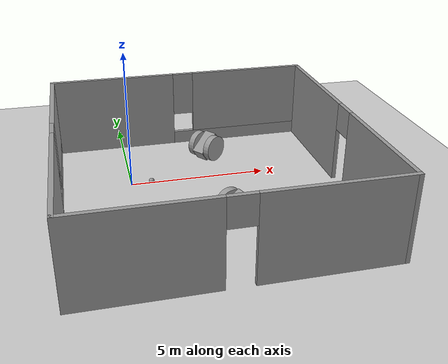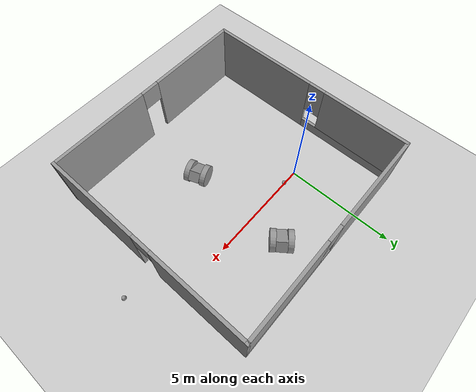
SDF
<sdf version="1.6">
 <world name="default">
  <plugin name="hello" filename="libhello.so"/>
  <light name="sun" type="directional">
   <pose>0 0 10 0 -0 0</pose>
   <diffuse>0.8 0.8 0.8 1</diffuse>
   <specular>0.2 0.2 0.2 1</specular>
   <attenuation>
    <range>1000</range>
    <constant>0.9</constant>
    <linear>0.01</linear>
    <quadratic>0.001</quadratic>
   </attenuation>
   <direction>-0.5 0.1 -0.9</direction>
  </light>
  <model name="ground_plane">
   <static>1</static>
   <link name="link">
    <collision name="collision">
     <geometry><plane><normal>0 0 1</normal><size>100 100</size></plane></geometry>
     <surface><friction><ode><mu>100</mu><mu2>50</mu2></ode></friction></surface>
    </collision>
    <visual name="visual">
     <cast_shadows>0</cast_shadows>
     <geometry><plane><normal>0 0 1</normal><size>100 100</size></plane></geometry>
     <material>
      <script><uri>file://media/materials/scripts/gazebo.material</uri><name>Gazebo/Grey</name></script>
     </material>
    </visual>
   </link>
  </model>
  <gravity>0 0 -9.8</gravity>
  <magnetic_field>6e-06 2.3e-05 -4.2e-05</magnetic_field>
  <atmosphere type="adiabatic"/>
  <physics name="default_physics" default="0" type="ode">
   <max_step_size>0.001</max_step_size>
   <real_time_factor>1</real_time_factor>
   <real_time_update_rate>1000</real_time_update_rate>
  </physics>
  <scene><ambient>0.4 0.4 0.4 1</ambient><background>0.7 0.7 0.7 1</background><shadows>1</shadows></scene>
  <spherical_coordinates>
   <surface_model>EARTH_WGS84</surface_model>
   <latitude_deg>0</latitude_deg>
   <longitude_deg>0</longitude_deg>
   <elevation>0</elevation>
   <heading_deg>0</heading_deg>
  </spherical_coordinates>
  <model name="Room">
   <pose>2.46923 -1.60697 0 0 -0 0</pose>
   <link name="Wall_0">
    <pose>0 5 0 0 -0 0</pose>
    <visual name="Wall_0_Visual_0">
     <pose>-2.67701 0 1.5 0 -0 0</pose>
     <geometry><box><size>4.79598 0.15 3</size></box></geometry>
     <material>
      <script><uri>file://media/materials/scripts/gazebo.material</uri><name>Gazebo/Grey</name></script>
      <ambient>1 1 1 1</ambient>
     </material>
     <meta><layer>0</layer></meta>
    </visual>
    <collision name="Wall_0_Collision_0">
     <geometry><box><size>4.79598 0.15 3</size></box></geometry>
     <pose>-2.67701 0 1.5 0 -0 0</pose>
    </collision>
    <visual name="Wall_0_Visual_1">
     <pose>2.39799 0 0.25 0 -0 0</pose>
     <geometry><box><size>5.35402 0.15 0.5</size></box></geometry>
     <material>
      <script><uri>file://media/materials/scripts/gazebo.material</uri><name>Gazebo/Grey</name></script>
      <ambient>1 1 1 1</ambient>
     </material>
     <meta><layer>0</layer></meta>
    </visual>
    <collision name="Wall_0_Collision_1">
     <geometry><box><size>5.35402 0.15 0.5</size></box></geometry>
     <pose>2.39799 0 0.25 0 -0 0</pose>
    </collision>
    <visual name="Wall_0_Visual_2">
     <pose>2.79799 0 1.75 0 -0 0</pose>
     <geometry><box><size>4.55402 0.15 2.5</size></box></geometry>
     <material>
      <script><uri>file://media/materials/scripts/gazebo.material</uri><name>Gazebo/Grey</name></script>
      <ambient>1 1 1 1</ambient>
     </material>
     <meta><layer>0</layer></meta>
    </visual>
    <collision name="Wall_0_Collision_2">
     <geometry><box><size>4.55402 0.15 2.5</size></box></geometry>
     <pose>2.79799 0 1.75 0 -0 0</pose>
    </collision>
    <visual name="Wall_0_Visual_3">
     <pose>0.120979 0 2.15 0 -0 0</pose>
     <geometry><box><size>0.8 0.15 1.7</size></box></geometry>
     <material>
      <script><uri>file://media/materials/scripts/gazebo.material</uri><name>Gazebo/Grey</name></script>
      <ambient>1 1 1 1</ambient>
     </material>
     <meta><layer>0</layer></meta>
    </visual>
    <collision name="Wall_0_Collision_3">
     <geometry><box><size>0.8 0.15 1.7</size></box></geometry>
     <pose>0.120979 0 2.15 0 -0 0</pose>
    </collision>
   </link>
   <link name="Wall_1">
    <collision name="Wall_1_Collision">
     <geometry><box><size>0.15 0.15 2.5</size></box></geometry>
     <pose>0 0 1.25 0 -0 0</pose>
    </collision>
    <visual name="Wall_1_Visual">
     <pose>0 0 1.25 0 -0 0</pose>
     <geometry><box><size>0.15 0.15 2.5</size></box></geometry>
     <material>
      <script><uri>file://media/materials/scripts/gazebo.material</uri><name>Gazebo/Grey</name></script>
      <ambient>1 1 1 1</ambient>
     </material>
     <meta><layer>0</layer></meta>
    </visual>
    <pose>5 5 0 0 -0 0</pose>
   </link>
   <link name="Wall_11">
    <pose>0 -5 0 0 -0 0</pose>
    <visual name="Wall_11_Visual_0">
     <pose>-2.82514 0 1.5 0 -0 0</pose>
     <geometry><box><size>4.49973 0.15 3</size></box></geometry>
     <material>
      <script><uri>file://media/materials/scripts/gazebo.material</uri><name>Gazebo/Grey</name></script>
      <ambient>1 1 1 1</ambient>
     </material>
     <meta><layer>0</layer></meta>
    </visual>
    <collision name="Wall_11_Collision_0">
     <geometry><box><size>4.49973 0.15 3</size></box></geometry>
     <pose>-2.82514 0 1.5 0 -0 0</pose>
    </collision>
    <visual name="Wall_11_Visual_1">
     <pose>2.69986 0 1.5 0 -0 0</pose>
     <geometry><box><size>4.75027 0.15 3</size></box></geometry>
     <material>
      <script><uri>file://media/materials/scripts/gazebo.material</uri><name>Gazebo/Grey</name></script>
      <ambient>1 1 1 1</ambient>
     </material>
     <meta><layer>0</layer></meta>
    </visual>
    <collision name="Wall_11_Collision_1">
     <geometry><box><size>4.75027 0.15 3</size></box></geometry>
     <pose>2.69986 0 1.5 0 -0 0</pose>
    </collision>
    <visual name="Wall_11_Visual_2">
     <pose>-0.125272 0 2.5 0 -0 0</pose>
     <geometry><box><size>0.9 0.15 1</size></box></geometry>
     <material>
      <script><uri>file://media/materials/scripts/gazebo.material</uri><name>Gazebo/Grey</name></script>
      <ambient>1 1 1 1</ambient>
     </material>
     <meta><layer>0</layer></meta>
    </visual>
    <collision name="Wall_11_Collision_2">
     <geometry><box><size>0.9 0.15 1</size></box></geometry>
     <pose>-0.125272 0 2.5 0 -0 0</pose>
    </collision>
   </link>
   <link name="Wall_4">
    <pose>-5 0 0 0 -0 1.5708</pose>
    <visual name="Wall_4_Visual_0">
     <pose>-2.47108 0 1.5 0 -0 0</pose>
     <geometry><box><size>5.20783 0.15 3</size></box></geometry>
     <material>
      <script><uri>file://media/materials/scripts/gazebo.material</uri><name>Gazebo/Grey</name></script>
      <ambient>1 1 1 1</ambient>
     </material>
     <meta><layer>0</layer></meta>
    </visual>
    <collision name="Wall_4_Collision_0">
     <geometry><box><size>5.20783 0.15 3</size></box></geometry>
     <pose>-2.47108 0 1.5 0 -0 0</pose>
    </collision>
    <visual name="Wall_4_Visual_1">
     <pose>2.60392 0 0.25 0 -0 0</pose>
     <geometry><box><size>4.94217 0.15 0.5</size></box></geometry>
     <material>
      <script><uri>file://media/materials/scripts/gazebo.material</uri><name>Gazebo/Grey</name></script>
      <ambient>1 1 1 1</ambient>
     </material>
     <meta><layer>0</layer></meta>
    </visual>
    <collision name="Wall_4_Collision_1">
     <geometry><box><size>4.94217 0.15 0.5</size></box></geometry>
     <pose>2.60392 0 0.25 0 -0 0</pose>
    </collision>
    <visual name="Wall_4_Visual_2">
     <pose>3.00392 0 1.75 0 -0 0</pose>
     <geometry><box><size>4.14217 0.15 2.5</size></box></geometry>
     <material>
      <script><uri>file://media/materials/scripts/gazebo.material</uri><name>Gazebo/Grey</name></script>
      <ambient>1 1 1 1</ambient>
     </material>
     <meta><layer>0</layer></meta>
    </visual>
    <collision name="Wall_4_Collision_2">
     <geometry><box><size>4.14217 0.15 2.5</size></box></geometry>
     <pose>3.00392 0 1.75 0 -0 0</pose>
    </collision>
    <visual name="Wall_4_Visual_3">
     <pose>0.532831 0 2.15 0 -0 0</pose>
     <geometry><box><size>0.8 0.15 1.7</size></box></geometry>
     <material>
      <script><uri>file://media/materials/scripts/gazebo.material</uri><name>Gazebo/Grey</name></script>
      <ambient>1 1 1 1</ambient>
     </material>
     <meta><layer>0</layer></meta>
    </visual>
    <collision name="Wall_4_Collision_3">
     <geometry><box><size>0.8 0.15 1.7</size></box></geometry>
     <pose>0.532831 0 2.15 0 -0 0</pose>
    </collision>
   </link>
   <link name="Wall_9">
    <pose>5 0 0 0 0 -1.5708</pose>
    <visual name="Wall_9_Visual_0">
     <pose>-2.76507 0 1.5 0 -0 0</pose>
     <geometry><box><size>4.61985 0.15 3</size></box></geometry>
     <material>
      <script><uri>file://media/materials/scripts/gazebo.material</uri><name>Gazebo/Grey</name></script>
      <ambient>1 1 1 1</ambient>
     </material>
     <meta><layer>0</layer></meta>
    </visual>
    <collision name="Wall_9_Collision_0">
     <geometry><box><size>4.61985 0.15 3</size></box></geometry>
     <pose>-2.76507 0 1.5 0 -0 0</pose>
    </collision>
    <visual name="Wall_9_Visual_1">
     <pose>2.75993 0 1.5 0 -0 0</pose>
     <geometry><box><size>4.63015 0.15 3</size></box></geometry>
     <material>
      <script><uri>file://media/materials/scripts/gazebo.material</uri><name>Gazebo/Grey</name></script>
      <ambient>1 1 1 1</ambient>
     </material>
     <meta><layer>0</layer></meta>
    </visual>
    <collision name="Wall_9_Collision_1">
     <geometry><box><size>4.63015 0.15 3</size></box></geometry>
     <pose>2.75993 0 1.5 0 -0 0</pose>
    </collision>
    <visual name="Wall_9_Visual_2">
     <pose>-0.005149 0 2.5 0 -0 0</pose>
     <geometry><box><size>0.9 0.15 1</size></box></geometry>
     <material>
      <script><uri>file://media/materials/scripts/gazebo.material</uri><name>Gazebo/Grey</name></script>
      <ambient>1 1 1 1</ambient>
     </material>
     <meta><layer>0</layer></meta>
    </visual>
    <collision name="Wall_9_Collision_2">
     <geometry><box><size>0.9 0.15 1</size></box></geometry>
     <pose>-0.005149 0 2.5 0 -0 0</pose>
    </collision>
   </link>
   <static>1</static>
  </model>
  <model name="myRobot">
   <link name="link_0">
    <inertial>
     <mass>1</mass>
     <inertia>
      <ixx>0.166667</ixx>
      <ixy>0</ixy>
      <ixz>0</ixz>
      <iyy>0.166667</iyy>
      <iyz>0</iyz>
      <izz>0.166667</izz>
     </inertia>
    </inertial>
    <visual name="visual">
     <geometry><box><size>1 0.5 0.5</size></box></geometry>
     <material>
      <lighting>1</lighting>
      <script><uri>file://media/materials/scripts/gazebo.material</uri><name>Gazebo/Grey</name></script>
      <shader type="pixel"><normal_map>__default__</normal_map></shader>
      <ambient>0.3 0.3 0.3 1</ambient>
      <diffuse>0.7 0.7 0.7 1</diffuse>
      <specular>0.01 0.01 0.01 1</specular>
      <emissive>0 0 0 1</emissive>
     </material>
    </visual>
    <collision name="collision">
     <geometry><box><size>1 0.5 0.5</size></box></geometry>
     <surface>
      <friction>
       <ode><mu>1</mu><mu2>1</mu2><fdir1>0 0 0</fdir1><slip1>0</slip1><slip2>0</slip2></ode>
       <torsional>
        <coefficient>1</coefficient>
        <patch_radius>0</patch_radius>
        <surface_radius>0</surface_radius>
        <use_patch_radius>1</use_patch_radius>
        <ode><slip>0</slip></ode>
       </torsional>
      </friction>
      <bounce><restitution_coefficient>0</restitution_coefficient><threshold>1e+06</threshold></bounce>
      <contact>
       <collide_without_contact>0</collide_without_contact>
       <collide_without_contact_bitmask>1</collide_without_contact_bitmask>
       <collide_bitmask>1</collide_bitmask>
       <ode>
        <soft_cfm>0</soft_cfm>
        <soft_erp>0.2</soft_erp>
        <kp>1e+13</kp>
        <kd>1</kd>
        <max_vel>0.01</max_vel>
        <min_depth>0</min_depth>
       </ode>
       <bullet>
        <split_impulse>1</split_impulse>
        <split_impulse_penetration_threshold>-0.01</split_impulse_penetration_threshold>
        <soft_cfm>0</soft_cfm>
        <soft_erp>0.2</soft_erp>
        <kp>1e+13</kp>
        <kd>1</kd>
       </bullet>
      </contact>
     </surface>
    </collision>
   </link>
   <link name="link_1">
    <pose>0 -0.375048 0 1.5707 -0 0</pose>
    <inertial>
     <mass>1</mass>
     <inertia><ixx>0.145833</ixx><ixy>0</ixy><ixz>0</ixz><iyy>0.145833</iyy><iyz>0</iyz><izz>0.125</izz></inertia>
    </inertial>
    <visual name="visual">
     <geometry><cylinder><radius>0.5</radius><length>0.25</length></cylinder></geometry>
     <material>
      <lighting>1</lighting>
      <script><uri>file://media/materials/scripts/gazebo.material</uri><name>Gazebo/Grey</name></script>
      <shader type="pixel"><normal_map>__default__</normal_map></shader>
      <ambient>0.3 0.3 0.3 1</ambient>
      <diffuse>0.7 0.7 0.7 1</diffuse>
      <specular>0.01 0.01 0.01 1</specular>
      <emissive>0 0 0 1</emissive>
     </material>
    </visual>
    <collision name="collision">
     <geometry><cylinder><radius>0.5</radius><length>0.25</length></cylinder></geometry>
     <surface>
      <friction>
       <ode><mu>1</mu><mu2>1</mu2><fdir1>0 0 0</fdir1><slip1>0</slip1><slip2>0</slip2></ode>
       <torsional>
        <coefficient>1</coefficient>
        <patch_radius>0</patch_radius>
        <surface_radius>0</surface_radius>
        <use_patch_radius>1</use_patch_radius>
        <ode><slip>0</slip></ode>
       </torsional>
      </friction>
      <bounce><restitution_coefficient>0</restitution_coefficient><threshold>1e+06</threshold></bounce>
      <contact>
       <collide_without_contact>0</collide_without_contact>
       <collide_without_contact_bitmask>1</collide_without_contact_bitmask>
       <collide_bitmask>1</collide_bitmask>
       <ode>
        <soft_cfm>0</soft_cfm>
        <soft_erp>0.2</soft_erp>
        <kp>1e+13</kp>
        <kd>1</kd>
        <max_vel>0.01</max_vel>
        <min_depth>0</min_depth>
       </ode>
       <bullet>
        <split_impulse>1</split_impulse>
        <split_impulse_penetration_threshold>-0.01</split_impulse_penetration_threshold>
        <soft_cfm>0</soft_cfm>
        <soft_erp>0.2</soft_erp>
        <kp>1e+13</kp>
        <kd>1</kd>
       </bullet>
      </contact>
     </surface>
    </collision>
   </link>
   <link name="link_1_clone">
    <pose>0 0.375048 0 1.5707 -0 0</pose>
    <inertial>
     <mass>1</mass>
     <inertia><ixx>0.145833</ixx><ixy>0</ixy><ixz>0</ixz><iyy>0.145833</iyy><iyz>0</iyz><izz>0.125</izz></inertia>
    </inertial>
    <visual name="visual">
     <geometry><cylinder><radius>0.5</radius><length>0.25</length></cylinder></geometry>
     <material>
      <lighting>1</lighting>
      <script><uri>file://media/materials/scripts/gazebo.material</uri><name>Gazebo/Grey</name></script>
      <shader type="pixel"><normal_map>__default__</normal_map></shader>
      <ambient>0.3 0.3 0.3 1</ambient>
      <diffuse>0.7 0.7 0.7 1</diffuse>
      <specular>0.01 0.01 0.01 1</specular>
      <emissive>0 0 0 1</emissive>
     </material>
    </visual>
    <collision name="collision">
     <geometry><cylinder><radius>0.5</radius><length>0.25</length></cylinder></geometry>
     <surface>
      <friction>
       <ode><mu>1</mu><mu2>1</mu2><fdir1>0 0 0</fdir1><slip1>0</slip1><slip2>0</slip2></ode>
       <torsional>
        <coefficient>1</coefficient>
        <patch_radius>0</patch_radius>
        <surface_radius>0</surface_radius>
        <use_patch_radius>1</use_patch_radius>
        <ode><slip>0</slip></ode>
       </torsional>
      </friction>
      <bounce><restitution_coefficient>0</restitution_coefficient><threshold>1e+06</threshold></bounce>
      <contact>
       <collide_without_contact>0</collide_without_contact>
       <collide_without_contact_bitmask>1</collide_without_contact_bitmask>
       <collide_bitmask>1</collide_bitmask>
       <ode>
        <soft_cfm>0</soft_cfm>
        <soft_erp>0.2</soft_erp>
        <kp>1e+13</kp>
        <kd>1</kd>
        <max_vel>0.01</max_vel>
        <min_depth>0</min_depth>
       </ode>
       <bullet>
        <split_impulse>1</split_impulse>
        <split_impulse_penetration_threshold>-0.01</split_impulse_penetration_threshold>
        <soft_cfm>0</soft_cfm>
        <soft_erp>0.2</soft_erp>
        <kp>1e+13</kp>
        <kd>1</kd>
       </bullet>
      </contact>
     </surface>
    </collision>
   </link>
   <joint name="link_0_JOINT_0" type="revolute">
    <parent>link_0</parent>
    <child>link_1</child>
    <axis>
     <xyz>0 0 1</xyz>
     <use_parent_model_frame>0</use_parent_model_frame>
     <limit>
      <lower>-1.79769e+308</lower>
      <upper>1.79769e+308</upper>
      <effort>-1</effort>
      <velocity>-1</velocity>
     </limit>
     <dynamics>
      <spring_reference>0</spring_reference>
      <spring_stiffness>0</spring_stiffness>
      <damping>0</damping>
     </dynamics>
    </axis>
    <physics>
     <ode><limit><cfm>0</cfm><erp>0.2</erp></limit><suspension><cfm>0</cfm><erp>0.2</erp></suspension></ode>
    </physics>
   </joint>
   <joint name="link_0_JOINT_1" type="revolute">
    <parent>link_0</parent>
    <child>link_1_clone</child>
    <axis>
     <xyz>0 0 1</xyz>
     <use_parent_model_frame>0</use_parent_model_frame>
     <limit>
      <lower>-1.79769e+308</lower>
      <upper>1.79769e+308</upper>
      <effort>-1</effort>
      <velocity>-1</velocity>
     </limit>
     <dynamics>
      <spring_reference>0</spring_reference>
      <spring_stiffness>0</spring_stiffness>
      <damping>0</damping>
     </dynamics>
    </axis>
    <physics>
     <ode><limit><cfm>0</cfm><erp>0.2</erp></limit><suspension><cfm>0</cfm><erp>0.2</erp></suspension></ode>
    </physics>
   </joint>
   <static>0</static>
   <pose>3.20023 1.69533 0.500008 6e-06 0.633718 -2.4848</pose>
  </model>
  <model name="myRobot_0">
   <link name="link_0">
    <inertial>
     <mass>1</mass>
     <inertia>
      <ixx>0.166667</ixx>
      <ixy>0</ixy>
      <ixz>0</ixz>
      <iyy>0.166667</iyy>
      <iyz>0</iyz>
      <izz>0.166667</izz>
     </inertia>
    </inertial>
    <visual name="visual">
     <geometry><box><size>1 0.5 0.5</size></box></geometry>
     <material>
      <lighting>1</lighting>
      <script><uri>file://media/materials/scripts/gazebo.material</uri><name>Gazebo/Grey</name></script>
      <shader type="pixel"><normal_map>__default__</normal_map></shader>
      <ambient>0.3 0.3 0.3 1</ambient>
      <diffuse>0.7 0.7 0.7 1</diffuse>
      <specular>0.01 0.01 0.01 1</specular>
      <emissive>0 0 0 1</emissive>
     </material>
    </visual>
    <collision name="collision">
     <geometry><box><size>1 0.5 0.5</size></box></geometry>
     <surface>
      <friction>
       <ode><mu>1</mu><mu2>1</mu2><fdir1>0 0 0</fdir1><slip1>0</slip1><slip2>0</slip2></ode>
       <torsional>
        <coefficient>1</coefficient>
        <patch_radius>0</patch_radius>
        <surface_radius>0</surface_radius>
        <use_patch_radius>1</use_patch_radius>
        <ode><slip>0</slip></ode>
       </torsional>
      </friction>
      <bounce><restitution_coefficient>0</restitution_coefficient><threshold>1e+06</threshold></bounce>
      <contact>
       <collide_without_contact>0</collide_without_contact>
       <collide_without_contact_bitmask>1</collide_without_contact_bitmask>
       <collide_bitmask>1</collide_bitmask>
       <ode>
        <soft_cfm>0</soft_cfm>
        <soft_erp>0.2</soft_erp>
        <kp>1e+13</kp>
        <kd>1</kd>
        <max_vel>0.01</max_vel>
        <min_depth>0</min_depth>
       </ode>
       <bullet>
        <split_impulse>1</split_impulse>
        <split_impulse_penetration_threshold>-0.01</split_impulse_penetration_threshold>
        <soft_cfm>0</soft_cfm>
        <soft_erp>0.2</soft_erp>
        <kp>1e+13</kp>
        <kd>1</kd>
       </bullet>
      </contact>
     </surface>
    </collision>
   </link>
   <link name="link_1">
    <pose>0 -0.375048 0 1.5707 -0 0</pose>
    <inertial>
     <mass>1</mass>
     <inertia><ixx>0.145833</ixx><ixy>0</ixy><ixz>0</ixz><iyy>0.145833</iyy><iyz>0</iyz><izz>0.125</izz></inertia>
    </inertial>
    <visual name="visual">
     <geometry><cylinder><radius>0.5</radius><length>0.25</length></cylinder></geometry>
     <material>
      <lighting>1</lighting>
      <script><uri>file://media/materials/scripts/gazebo.material</uri><name>Gazebo/Grey</name></script>
      <shader type="pixel"><normal_map>__default__</normal_map></shader>
      <ambient>0.3 0.3 0.3 1</ambient>
      <diffuse>0.7 0.7 0.7 1</diffuse>
      <specular>0.01 0.01 0.01 1</specular>
      <emissive>0 0 0 1</emissive>
     </material>
    </visual>
    <collision name="collision">
     <geometry><cylinder><radius>0.5</radius><length>0.25</length></cylinder></geometry>
     <surface>
      <friction>
       <ode><mu>1</mu><mu2>1</mu2><fdir1>0 0 0</fdir1><slip1>0</slip1><slip2>0</slip2></ode>
       <torsional>
        <coefficient>1</coefficient>
        <patch_radius>0</patch_radius>
        <surface_radius>0</surface_radius>
        <use_patch_radius>1</use_patch_radius>
        <ode><slip>0</slip></ode>
       </torsional>
      </friction>
      <bounce><restitution_coefficient>0</restitution_coefficient><threshold>1e+06</threshold></bounce>
      <contact>
       <collide_without_contact>0</collide_without_contact>
       <collide_without_contact_bitmask>1</collide_without_contact_bitmask>
       <collide_bitmask>1</collide_bitmask>
       <ode>
        <soft_cfm>0</soft_cfm>
        <soft_erp>0.2</soft_erp>
        <kp>1e+13</kp>
        <kd>1</kd>
        <max_vel>0.01</max_vel>
        <min_depth>0</min_depth>
       </ode>
       <bullet>
        <split_impulse>1</split_impulse>
        <split_impulse_penetration_threshold>-0.01</split_impulse_penetration_threshold>
        <soft_cfm>0</soft_cfm>
        <soft_erp>0.2</soft_erp>
        <kp>1e+13</kp>
        <kd>1</kd>
       </bullet>
      </contact>
     </surface>
    </collision>
   </link>
   <link name="link_1_clone">
    <pose>0 0.375048 0 1.5707 -0 0</pose>
    <inertial>
     <mass>1</mass>
     <inertia><ixx>0.145833</ixx><ixy>0</ixy><ixz>0</ixz><iyy>0.145833</iyy><iyz>0</iyz><izz>0.125</izz></inertia>
    </inertial>
    <visual name="visual">
     <geometry><cylinder><radius>0.5</radius><length>0.25</length></cylinder></geometry>
     <material>
      <lighting>1</lighting>
      <script><uri>file://media/materials/scripts/gazebo.material</uri><name>Gazebo/Grey</name></script>
      <shader type="pixel"><normal_map>__default__</normal_map></shader>
      <ambient>0.3 0.3 0.3 1</ambient>
      <diffuse>0.7 0.7 0.7 1</diffuse>
      <specular>0.01 0.01 0.01 1</specular>
      <emissive>0 0 0 1</emissive>
     </material>
    </visual>
    <collision name="collision">
     <geometry><cylinder><radius>0.5</radius><length>0.25</length></cylinder></geometry>
     <surface>
      <friction>
       <ode><mu>1</mu><mu2>1</mu2><fdir1>0 0 0</fdir1><slip1>0</slip1><slip2>0</slip2></ode>
       <torsional>
        <coefficient>1</coefficient>
        <patch_radius>0</patch_radius>
        <surface_radius>0</surface_radius>
        <use_patch_radius>1</use_patch_radius>
        <ode><slip>0</slip></ode>
       </torsional>
      </friction>
      <bounce><restitution_coefficient>0</restitution_coefficient><threshold>1e+06</threshold></bounce>
      <contact>
       <collide_without_contact>0</collide_without_contact>
       <collide_without_contact_bitmask>1</collide_without_contact_bitmask>
       <collide_bitmask>1</collide_bitmask>
       <ode>
        <soft_cfm>0</soft_cfm>
        <soft_erp>0.2</soft_erp>
        <kp>1e+13</kp>
        <kd>1</kd>
        <max_vel>0.01</max_vel>
        <min_depth>0</min_depth>
       </ode>
       <bullet>
        <split_impulse>1</split_impulse>
        <split_impulse_penetration_threshold>-0.01</split_impulse_penetration_threshold>
        <soft_cfm>0</soft_cfm>
        <soft_erp>0.2</soft_erp>
        <kp>1e+13</kp>
        <kd>1</kd>
       </bullet>
      </contact>
     </surface>
    </collision>
   </link>
   <joint name="link_0_JOINT_0" type="revolute">
    <parent>link_0</parent>
    <child>link_1</child>
    <axis>
     <xyz>0 0 1</xyz>
     <use_parent_model_frame>0</use_parent_model_frame>
     <limit>
      <lower>-1.79769e+308</lower>
      <upper>1.79769e+308</upper>
      <effort>-1</effort>
      <velocity>-1</velocity>
     </limit>
     <dynamics>
      <spring_reference>0</spring_reference>
      <spring_stiffness>0</spring_stiffness>
      <damping>0</damping>
     </dynamics>
    </axis>
    <physics>
     <ode><limit><cfm>0</cfm><erp>0.2</erp></limit><suspension><cfm>0</cfm><erp>0.2</erp></suspension></ode>
    </physics>
   </joint>
   <joint name="link_0_JOINT_1" type="revolute">
    <parent>link_0</parent>
    <child>link_1_clone</child>
    <axis>
     <xyz>0 0 1</xyz>
     <use_parent_model_frame>0</use_parent_model_frame>
     <limit>
      <lower>-1.79769e+308</lower>
      <upper>1.79769e+308</upper>
      <effort>-1</effort>
      <velocity>-1</velocity>
     </limit>
     <dynamics>
      <spring_reference>0</spring_reference>
      <spring_stiffness>0</spring_stiffness>
      <damping>0</damping>
     </dynamics>
    </axis>
    <physics>
     <ode><limit><cfm>0</cfm><erp>0.2</erp></limit><suspension><cfm>0</cfm><erp>0.2</erp></suspension></ode>
    </physics>
   </joint>
   <static>0</static>
   <pose>3.12988 -3.16761 0.500008 6e-06 0.631093 -2.80564</pose>
  </model>
  <model name="my_ball">
   <link name="link">
    <inertial>
     <mass>1</mass>
     <inertia><ixx>0.1</ixx><ixy>0</ixy><ixz>0</ixz><iyy>0.1</iyy><iyz>0</iyz><izz>0.1</izz></inertia>
    </inertial>
    <visual name="visual">
     <geometry><sphere><radius>0.1</radius></sphere></geometry>
     <material>
      <script><name>Gazebo/Grey</name><uri>file://media/materials/scripts/gazebo.material</uri></script>
      <shader type="pixel"><normal_map>__default__</normal_map></shader>
      <ambient>1 1 1 1</ambient>
      <diffuse>1 1 1 1</diffuse>
      <specular>1 1 1 1</specular>
      <emissive>1 1 1 1</emissive>
     </material>
    </visual>
    <collision name="collision">
     <geometry><sphere><radius>0.1</radius></sphere></geometry>
     <surface>
      <friction>
       <ode><mu>1</mu><mu2>1</mu2><fdir1>0 0 0</fdir1><slip1>0</slip1><slip2>0</slip2></ode>
       <torsional>
        <coefficient>1</coefficient>
        <patch_radius>0</patch_radius>
        <surface_radius>0</surface_radius>
        <use_patch_radius>1</use_patch_radius>
        <ode><slip>0</slip></ode>
       </torsional>
      </friction>
      <bounce><restitution_coefficient>0</restitution_coefficient><threshold>1e+06</threshold></bounce>
      <contact>
       <collide_without_contact>0</collide_without_contact>
       <collide_without_contact_bitmask>1</collide_without_contact_bitmask>
       <collide_bitmask>1</collide_bitmask>
       <ode>
        <soft_cfm>0</soft_cfm>
        <soft_erp>0.2</soft_erp>
        <kp>1e+13</kp>
        <kd>1</kd>
        <max_vel>0.01</max_vel>
        <min_depth>0</min_depth>
       </ode>
       <bullet>
        <split_impulse>1</split_impulse>
        <split_impulse_penetration_threshold>-0.01</split_impulse_penetration_threshold>
        <soft_cfm>0</soft_cfm>
        <soft_erp>0.2</soft_erp>
        <kp>1e+13</kp>
        <kd>1</kd>
       </bullet>
      </contact>
     </surface>
    </collision>
   </link>
   <static>0</static>
   <pose>9.08336 -1.59852 0.1 0 -0 0</pose>
  </model>
  <model name="my_ball_0">
   <link name="link">
    <inertial>
     <mass>1</mass>
     <inertia><ixx>0.1</ixx><ixy>0</ixy><ixz>0</ixz><iyy>0.1</iyy><iyz>0</iyz><izz>0.1</izz></inertia>
    </inertial>
    <visual name="visual">
     <geometry><sphere><radius>0.1</radius></sphere></geometry>
     <material>
      <script><name>Gazebo/Grey</name><uri>file://media/materials/scripts/gazebo.material</uri></script>
      <shader type="pixel"><normal_map>__default__</normal_map></shader>
      <ambient>1 1 1 1</ambient>
      <diffuse>1 1 1 1</diffuse>
      <specular>1 1 1 1</specular>
      <emissive>1 1 1 1</emissive>
     </material>
    </visual>
    <collision name="collision">
     <geometry><sphere><radius>0.1</radius></sphere></geometry>
     <surface>
      <friction>
       <ode><mu>1</mu><mu2>1</mu2><fdir1>0 0 0</fdir1><slip1>0</slip1><slip2>0</slip2></ode>
       <torsional>
        <coefficient>1</coefficient>
        <patch_radius>0</patch_radius>
        <surface_radius>0</surface_radius>
        <use_patch_radius>1</use_patch_radius>
        <ode><slip>0</slip></ode>
       </torsional>
      </friction>
      <bounce><restitution_coefficient>0</restitution_coefficient><threshold>1e+06</threshold></bounce>
      <contact>
       <collide_without_contact>0</collide_without_contact>
       <collide_without_contact_bitmask>1</collide_without_contact_bitmask>
       <collide_bitmask>1</collide_bitmask>
       <ode>
        <soft_cfm>0</soft_cfm>
        <soft_erp>0.2</soft_erp>
        <kp>1e+13</kp>
        <kd>1</kd>
        <max_vel>0.01</max_vel>
        <min_depth>0</min_depth>
       </ode>
       <bullet>
        <split_impulse>1</split_impulse>
        <split_impulse_penetration_threshold>-0.01</split_impulse_penetration_threshold>
        <soft_cfm>0</soft_cfm>
        <soft_erp>0.2</soft_erp>
        <kp>1e+13</kp>
        <kd>1</kd>
       </bullet>
      </contact>
     </surface>
    </collision>
   </link>
   <static>0</static>
   <pose>0.747746 -0.011086 0.1 0 -0 0</pose>
  </model>
 </world>
</sdf>
